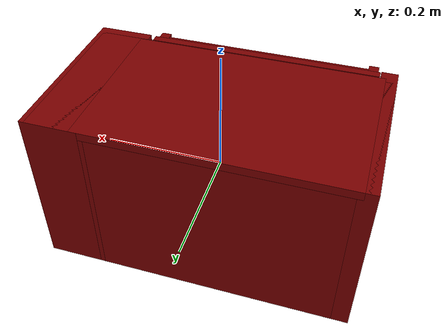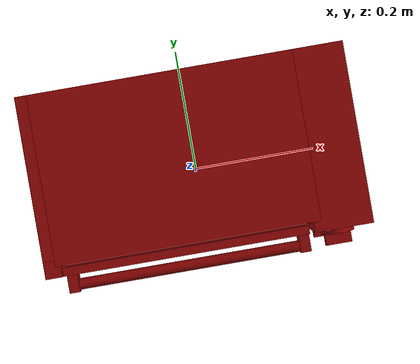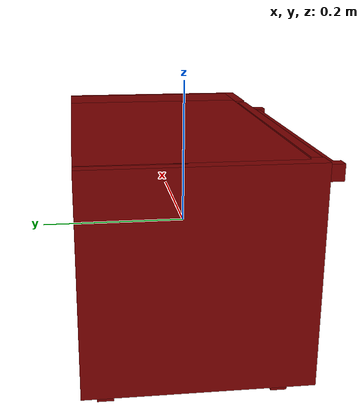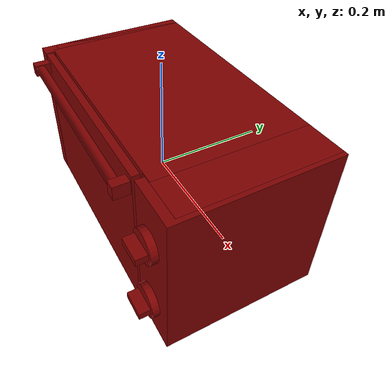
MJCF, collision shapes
<?xml version='1.0' encoding='UTF-8'?>
<mujoco model="model">
  <option timestep="0.002" gravity="0.0 0.0 -9.81"/>
  <compiler angle="radian"/>
  <asset>
    <mesh file="visuals/Body001.obj" name="Body001_vis"/>
    <mesh file="visuals/Container001.obj" name="Container001_vis"/>
    <mesh file="visuals/Door001.obj" name="Door001_vis"/>
    <mesh file="visuals/Door001_Clear.obj" name="Door001_Clear_vis"/>
    <mesh file="visuals/Knob001.obj" name="Knob001_vis"/>
    <mesh file="visuals/Knob002.obj" name="Knob002_vis"/>
    <texture file="visuals/T_BC001.png" name="Body001_material" type="2d"/>
    <material name="Body001_material" rgba="1 1 1 1.0" texture="Body001_material" shininess="0.4472135901451111" specular="1"/>
    <texture file="visuals/T_BC001.png" name="Container001_material" type="2d"/>
    <material name="Container001_material" rgba="1 1 1 1.0" texture="Container001_material" shininess="0.4472135901451111" specular="11"/>
    <texture file="visuals/T_BC001.png" name="Door001_material" type="2d"/>
    <material name="Door001_material" rgba="1 1 1 1.0" texture="Door001_material" shininess="0.4472135901451111" specular="2"/>
    <texture file="visuals/T_BC001.png" name="Door001_Clear_material" type="2d"/>
    <material name="Door001_Clear_material" rgba="1 1 1 0.699999988079071" texture="Door001_Clear_material" shininess="0.4472135901451111" specular="1"/>
    <texture file="visuals/T_BC001.png" name="Knob001_material" type="2d"/>
    <material name="Knob001_material" rgba="1 1 1 1.0" texture="Knob001_material" shininess="0.4472135901451111" specular="0.3103448502657381"/>
    <texture file="visuals/T_BC001.png" name="Knob002_material" type="2d"/>
    <material name="Knob002_material" rgba="1 1 1 1.0" texture="Knob002_material" shininess="0.4472135901451111" specular="0.3103448502657381"/>
  </asset>
  <default>
    <default class="visual">
      <geom conaffinity="0" contype="0" group="1" type="mesh"/>
    </default>
    <default class="collision">
      <geom group="0" rgba="0.5 0 0 0.5"/>
    </default>
    <default class="spawn">
      <geom group="0" rgba="1 1 1 0.5" contype="0" conaffinity="0"/>
      <site group="0" rgba="1 1 1 0.5"/>
    </default>
    <default class="region">
      <geom group="1" conaffinity="0" contype="0" rgba="0 1 0 0"/>
    </default>
  </default>
  <worldbody>
    <body>
      <body name="object">
        <geom mesh="Body001_vis" type="mesh" solimp="0.998 0.998 0.001" solref="0.001 1" friction="0.95 0.3 0.1" class="visual" material="Body001_material"/>
        <geom class="collision" type="box" pos="-0.000591 0.144889 0.005696" size="0.2506652772426605 0.010694536380469799 0.13638395071029663" quat="1.0 0.0 0.0 0.0" density="1000.0"/>
        <geom class="collision" type="box" pos="0.206856 0.015977 0.006473" size="0.044854067265987396 0.13960707187652588 0.13716137409210205" quat="1.0 0.0 0.0 0.0" density="1000.0"/>
        <geom class="collision" type="box" pos="-0.029866 0.024058 0.137175" size="0.20402953028678894 0.13152606785297394 0.006459514610469341" quat="1.0 0.0 0.0 0.0" density="1000.0"/>
        <geom class="collision" type="box" pos="-0.038773 0.030651 -0.114524" size="0.21293650567531586 0.12493230402469635 0.01616460084915161" quat="1.0 0.0 0.0 0.0" density="1000.0"/>
        <geom class="collision" type="box" pos="0.199090 0.023631 0.006473" size="0.044854067265987396 0.13195276260375977 0.13716138899326324" quat="1.0 0.0 0.0 0.0" density="1000.0"/>
        <geom class="collision" type="box" pos="-0.238409 0.028928 0.006473" size="0.0133005166426301 0.12665598094463348 0.13716137409210205" quat="1.0 0.0 0.0 0.0" density="1000.0"/>
        <geom class="collision" type="box" pos="-0.222577 0.025209 0.027683" size="0.0060947914607822895 0.10913117974996567 0.0057051172479987144" quat="1.0 0.0 0.0 0.0" density="1000.0"/>
        <geom class="collision" type="box" pos="-0.222577 0.025209 -0.017802" size="0.0060947914607822895 0.10913117974996567 0.0057051172479987144" quat="1.0 0.0 0.0 0.0" density="1000.0"/>
        <geom class="collision" type="box" pos="0.150567 0.025209 -0.017802" size="0.0060947914607822895 0.10913117974996567 0.0057051172479987144" quat="1.0 0.0 0.0 0.0" density="1000.0"/>
        <geom class="collision" type="box" pos="0.150567 0.025209 0.027683" size="0.0060947914607822895 0.10913117974996567 0.0057051172479987144" quat="1.0 0.0 0.0 0.0" density="1000.0"/>
        <geom class="collision" type="box" pos="-0.238613 0.015652 0.006473" size="0.013097071088850498 0.13993124663829803 0.13716137409210205" quat="1.0 0.0 0.0 0.0" density="1000.0"/>
        <geom class="collision" type="box" pos="-0.038773 0.016607 -0.126554" size="0.21293650567531586 0.12613962590694427 0.00413384148851037" quat="1.0 0.0 0.0 0.0" density="1000.0"/>
        <geom class="collision" type="box" pos="0.224487 0.126756 -0.133728" size="0.009973940439522266 0.009973940439522266 0.009906512685120106" quat="1.0 0.0 0.0 0.0" density="1000.0"/>
        <geom class="collision" type="box" pos="-0.226699 -0.083618 -0.133728" size="0.009973935782909393 0.009973935782909393 0.009906508028507233" quat="1.0 0.0 0.0 0.0" density="1000.0"/>
        <geom class="collision" type="box" pos="-0.226699 0.126756 -0.133728" size="0.00997393112629652 0.00997393112629652 0.00990650337189436" quat="1.0 0.0 0.0 0.0" density="1000.0"/>
        <geom class="collision" type="box" pos="0.224487 -0.083618 -0.133728" size="0.009973926469683647 0.009973926469683647 0.009906498715281487" quat="1.0 0.0 0.0 0.0" density="1000.0"/>
        <body name="Container001">
          <joint axis="0.0 -1.0 0.0" pos="-0.035610 0.022472 -0.017467" limited="true" name="Container001_joint" range="0.0 0.19" type="slide" damping="1" frictionloss="1" armature=".01" stiffness="0.05"/>
          <geom mesh="Container001_vis" type="mesh" solimp="0.998 0.998 0.001" solref="0.001 1" friction="0.95 0.3 0.1" class="visual" material="Container001_material"/>
          <geom class="collision" type="box" pos="0.136043 0.021269 -0.017378" size="0.09847038239240646 0.008824340999126434 0.0015168222598731518" quat="0.5913967490196228 0.3876209557056427 -0.38762110471725464 -0.5913964509963989" density="1000.0"/>
          <geom class="collision" type="box" pos="-0.034983 0.021269 -0.025562" size="0.17033974826335907 0.09847010672092438 0.0015168222598731518" quat="1.0 0.0 0.0 0.0" density="1000.0"/>
          <geom class="collision" type="box" pos="-0.034208 0.124664 -0.017891" size="0.1700173318386078 0.008824369870126247 0.001516826217994094" quat="1.7852143230356887e-07 1.0509911874123645e-07 0.6175944209098816 -0.7864967584609985" density="1000.0"/>
          <geom class="collision" type="box" pos="-0.207053 0.021269 -0.017378" size="0.09847038239240646 0.008824340999126434 0.0015168222598731518" quat="0.5913967490196228 -0.3876209557056427 0.38762110471725464 -0.5913964509963989" density="1000.0"/>
          <geom class="collision" type="box" pos="-0.034208 -0.079626 -0.017891" size="0.1700173318386078 0.008824369870126247 0.001516826217994094" quat="2.7227920895711577e-07 -3.147618343746217e-08 -0.6175944209098816 -0.7864967584609985" density="1000.0"/>
          <geom class="collision" type="box" pos="-0.030316 0.128913 -0.009095" size="0.16417618095874786 0.002867063507437706 0.0010925796814262867" quat="1.0 0.0 0.0 0.0" density="1000.0"/>
          <geom class="collision" type="box" pos="-0.030316 -0.083895 -0.009095" size="0.16417618095874786 0.002867063507437706 0.0010925796814262867" quat="1.0 0.0 0.0 0.0" density="1000.0"/>
          <geom class="collision" type="box" pos="0.143404 0.021546 -0.009095" size="0.004880692344158888 0.09095386415719986 0.0010925796814262867" quat="1.0 0.0 0.0 0.0" density="1000.0"/>
          <geom class="collision" type="box" pos="0.136165 -0.075995 -0.009095" size="0.01407044567167759 0.004880691412836313 0.0010925796814262867" quat="0.3579157590866089 0.0 -0.0 -0.9337539076805115" density="1000.0"/>
          <geom class="collision" type="box" pos="0.136472 0.120892 -0.009095" size="0.014070444740355015 0.004880690947175026 0.0010925796814262867" quat="0.35791587829589844 0.0 0.0 0.9337538480758667" density="1000.0"/>
          <geom class="collision" type="box" pos="-0.205810 0.120892 -0.009095" size="0.014070444740355015 0.004880690947175026 0.0010925796814262867" quat="0.35791587829589844 0.0 -0.0 -0.9337538480758667" density="1000.0"/>
          <geom class="collision" type="box" pos="-0.205504 -0.075995 -0.009095" size="0.014070444740355015 0.004880690947175026 0.0010925796814262867" quat="0.35791587829589844 0.0 0.0 0.9337538480758667" density="1000.0"/>
          <geom class="collision" type="box" pos="-0.212743 0.021546 -0.009095" size="0.004880692344158888 0.09095386415719986 0.0010925796814262867" quat="1.0 0.0 0.0 0.0" density="1000.0"/>
        </body>
        <body name="Door001">
          <joint axis="1.0 0.0 0.0" pos="-0.035425 -0.122561 -0.124826" limited="true" name="Door001_joint" range="0.0 1.5707963267948966" type="hinge" damping="1" frictionloss="1" armature=".01" stiffness="1" springref="-0.1"/>
          <geom mesh="Door001_vis" type="mesh" solimp="0.998 0.998 0.001" solref="0.001 1" friction="0.95 0.3 0.1" class="visual" material="Door001_material"/>
          <geom class="collision" type="box" pos="-0.035263 -0.117486 0.006399" size="0.1890205442905426 0.0064972518011927605 0.13636209070682526" quat="1.0 0.0 0.0 0.0" density="1000.0"/>
          <geom class="collision" type="box" pos="-0.212937 -0.138453 0.123513" size="0.008080609142780304 0.013857204467058182 0.01037103496491909" quat="1.0 0.0 0.0 0.0" density="1000.0"/>
          <geom class="collision" type="box" pos="0.144593 -0.137978 0.122990" size="0.008163787424564362 0.013382012024521828 0.011532559990882874" quat="1.0 0.0 0.0 0.0" density="1000.0"/>
          <geom class="collision" type="cylinder" pos="-0.035811 -0.141623 0.124343" size="0.008574376814067364 0.1726255565881729" quat="0.7071068286895752 -4.750302551315144e-08 -0.7071067094802856 -4.7503014855010406e-08" density="1000.0"/>
          <body name="Door001_Clear">
            <geom mesh="Door001_Clear_vis" type="mesh" solimp="0.998 0.998 0.001" solref="0.001 1" friction="0.95 0.3 0.1" class="visual" material="Door001_Clear_material"/>
            <geom class="collision" type="box" pos="-0.035409 -0.116732 0.013374" size="0.18871034681797028 0.0024410283658653498 0.10646211355924606" quat="1.0 0.0 0.0 0.0" density="1000.0"/>
          </body>
        </body>
        <body name="Knob001">
          <joint axis="0.0 1.0 0.0" pos="0.206391 -0.139787 0.068117" limited="true" name="Knob001_joint" range="0.0 4.4505895925855405" type="hinge" damping="0.05" armature="0.001" springref="-0.4"/>
          <geom mesh="Knob001_vis" type="mesh" solimp="0.998 0.998 0.001" solref="0.001 1" friction="0.95 0.3 0.1" class="visual" material="Knob001_material"/>
          <geom class="collision" type="cylinder" pos="0.206782 -0.131116 0.067967" size="0.027087995782494545 0.005860324949026108" quat="0.7071068286895752 0.7071067690849304 1.5700924318127872e-16 5.9269340452702814e-24" density="1000.0"/>
          <geom class="collision" type="box" pos="0.206096 -0.145827 0.068112" size="0.020894603803753853 0.009981375187635422 0.006096269004046917" quat="1.0 0.0 0.0 0.0" density="1000.0"/>
        </body>
        <body name="Knob002">
          <joint axis="0.0 1.0 0.0" pos="0.206391 -0.139787 -0.058605" limited="true" name="Knob002_joint" range="0.0 4.71238898038469" type="hinge" damping="0.05" armature="0.001" springref="-0.4"/>
          <geom mesh="Knob002_vis" type="mesh" solimp="0.998 0.998 0.001" solref="0.001 1" friction="0.95 0.3 0.1" class="visual" material="Knob002_material"/>
          <geom class="collision" type="box" pos="0.206096 -0.145827 -0.058324" size="0.020894603803753853 0.009981375187635422 0.006096269004046917" quat="1.0 0.0 0.0 0.0" density="1000.0"/>
          <geom class="collision" type="cylinder" pos="0.206579 -0.131116 -0.058490" size="0.027087995782494545 0.005860324949026108" quat="0.7071068286895752 0.7071067690849304 1.5700924318127872e-16 5.9269340452702814e-24" density="1000.0"/>
        </body>
        <geom class="region" name="reg_int" type="box" pos="-0.036181500000000005 0.018352 0.016140499999999995" size="0.1893995 0.11583099999999999 0.11470949999999999"/>
        <geom class="region" name="reg_main" type="box" pos="0.0 0.015573000000000004 0.0" size="0.251709 0.140011 0.143635"/>
      </body>
    </body>
  </worldbody>
  <actuator>
    <motor name="Container001_joint_actuator" joint="Container001_joint" gear="10"/>
    <motor name="Door001_joint_actuator" joint="Door001_joint" gear="10"/>
    <motor name="Knob001_joint_actuator" joint="Knob001_joint" gear="10"/>
    <motor name="Knob002_joint_actuator" joint="Knob002_joint" gear="10"/>
  </actuator>
</mujoco>
